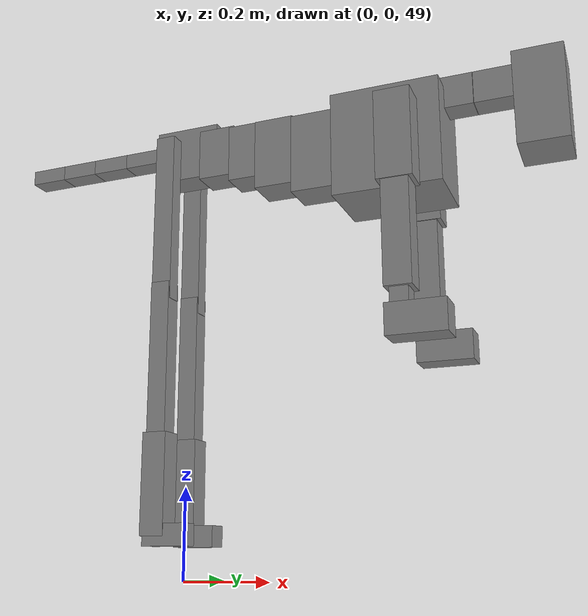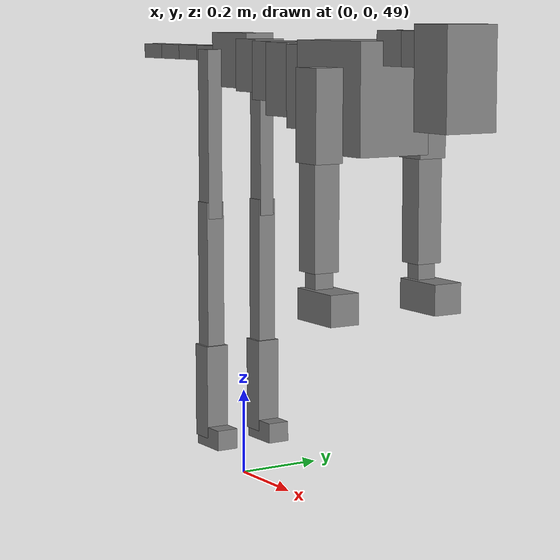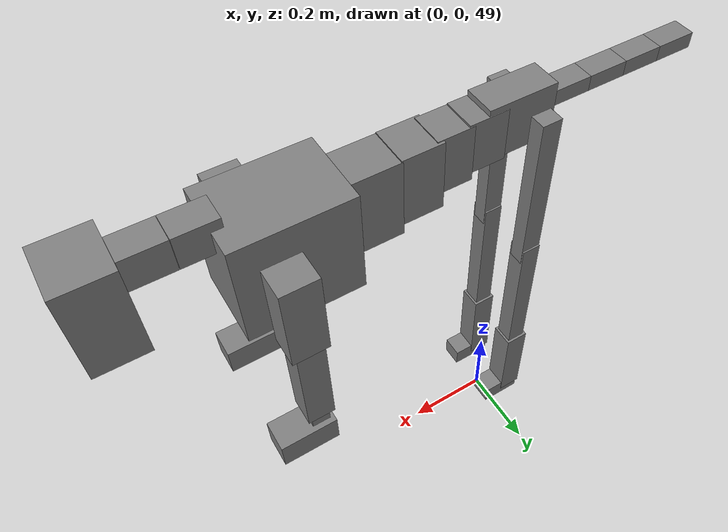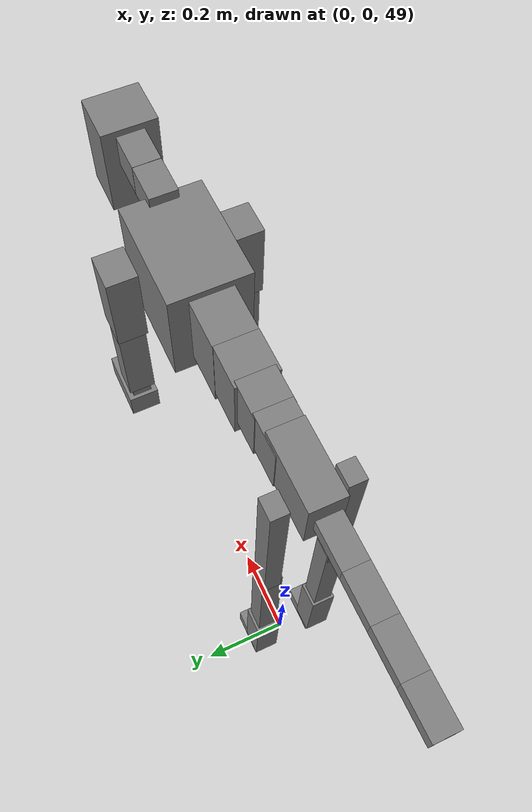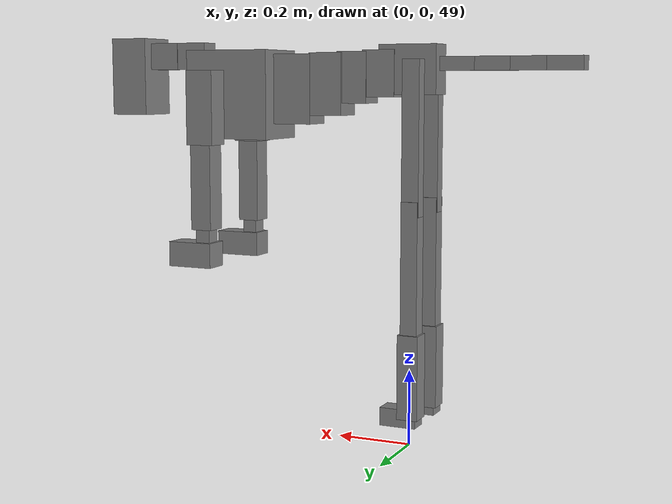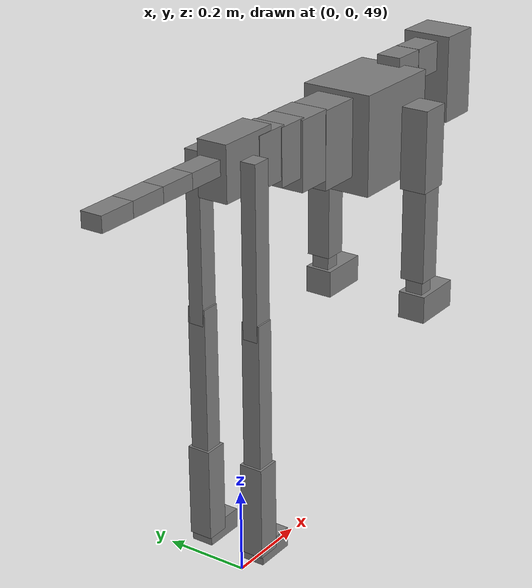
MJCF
<mujoco model="dog">

    <default>
        <joint armature="0.02" stiffness="1" damping="0.2" limited="true"/>
        <geom condim="3" friction="1 0.05 0.05" margin="0.01"/>
        <motor ctrllimited="true" ctrlrange="-1.0 1.0" forcelimited="true" gear="50"/>
    </default>

    <compiler inertiafromgeom="true" angle="radian"/>

    <option timestep="0.016" iterations="50" tolerance="1e-10" solver="Newton" jacobian="dense" cone="pyramidal"/>

    <size nconmax="20000" njmax="60000" nstack="5000000"/>
    <visual>
        <map force="0.1" zfar="30"/>
        <rgba haze="0.15 0.25 0.35 1"/>
        <quality shadowsize="2048"/>
        <global offwidth="800" offheight="800"/>
    </visual>

    <asset>
        <texture type="skybox" builtin="gradient" rgb1="0.3 0.5 0.7" rgb2="0 0 0" width="512" height="512"/>
        <texture name="texplane" type="2d" builtin="checker" rgb1=".2 .3 .4" rgb2=".1 0.15 0.2" width="512" height="512"
                 mark="cross" markrgb=".8 .8 .8"/>
        <texture name="texgeom" type="cube" builtin="flat" mark="cross" width="127" height="1278" rgb1="0.8 0.6 0.4"
                 rgb2="0.8 0.6 0.4" markrgb="1 1 1" random="0.01"/>

        <material name="matplane" reflectance="0.3" texture="texplane" texrepeat="1 1" texuniform="true"/>
        <material name="matgeom" texture="texgeom" texuniform="true" rgba="0.8 0.6 .4 1"/>
    </asset>

    <worldbody>
        <geom name="floor" pos="0 0 0" size="0 0 .25" type="plane" material="matplane" condim="3"/>

        <light directional="false" diffuse=".2 .2 .2" specular="0 0 0" pos="0 0 5" dir="0 0 -1" castshadow="false"/>
        <light mode="targetbodycom" target="torso" directional="false" diffuse=".8 .8 .8" specular="0.3 0.3 0.3"
               pos="0 0 4.0" dir="0 0 -1"/>

        <body name="root" pos="0 0 50">
            <freejoint name="root_1"/>
            <geom type="box" pos="0 0 -0.02" size="0.0774  0.0358  0.063" density="2030"/>

            <body name="spine1" pos="0.054 0 0">
                <joint name="spine1_y" axis="0 1 0" range="0 0.7" limited="true"/>
                <geom type="box" pos="0.02375 0 -0.03" size="0.04375  0.0375  0.05985" density="2030"/>

                <body name="spine2" pos="0.0612 0 0">
                    <joint name="spine2_y" axis="0 1 0" range="-0.15 0.15" limited="true"/>
                    <geom type="box" pos="0.03555  0  -0.04" size="0.04055  0.039  0.06615" density="2030"/>

                    <body name="spine3" pos="0.0730 0 0">
                        <joint name="spine3_y" axis="0 1 0" range="-0.15 0.15" limited="true"/>
                        <geom type="box" pos="0.03555  0  -0.057" size="0.04555  0.0445  0.081" density="2030"/>

                        <body name="spine4" pos="0.0780 0 0">
                            <joint name="spine4_y" axis="0 1 0" range="-0.15 0.15" limited="true"/>
                            <geom type="box" pos="0.05265  0  -0.07" size="0.05265  0.045  0.09135" density="2030"/>

                            <body name="torso" pos="0.1082 0 0">
                                <joint name="torso_y" axis="0 1 0" range="-0.15 0.15" limited="true"/>
                                <geom type="box" pos="0.11925  0  -0.085" size="0.11925  0.085  0.11745"
                                      density="2030"/>

                                <body name="neck1" pos="0.2160  0   0.0180">
                                    <joint name="neck1_y" axis="0 1 0" range="-1.2  -1" limited="true"/>
                                    <geom type="box" pos="0.0423  0  0" size="0.0423  0.03  0.036" density="2325"/>

                                    <body name="neck2" pos="0.0853  0  0">
                                        <joint name="neck2_y" axis="0 1 0" range="0.1  0" limited="true"/>
                                        <geom type="box" pos="0.0423  0  0" size="0.0423  0.03  0.036" density="2325"/>

                                        <body name="head" pos="0.0853  0  0">
                                            <joint name="head_y" axis="0 1 0" range="-0.3  -0.2" limited="true"/>
                                            <geom type="box" pos="0.0531  0  -0.055" size="0.0531  0.06  0.1044"
                                                  density="4030"/>

                                        </body>
                                    </body>
                                </body>

                                <body name="front_shoulder" pos="0.156  0   -0.0480">
                                    <joint name="front_shoulder_y" axis="0 1 0" range="-1 1.5" limited="true"/>
                                    <geom type="box" pos="0 0.13 -0.0706" size="0.0381  0.0325  0.0973" density="1158"/>
                                    <geom type="box" pos="0 -0.13 -0.0706" size="0.0381  0.0325  0.0973"
                                          density="1158"/>

                                    <body name="front_elbow" pos="0  0  -0.1412">
                                        <joint name="front_elbow_y" axis="0 1 0" range="-2 0" limited="true"/>
                                        <geom type="box" pos="0 0.13 -0.1254" size="0.0290  0.0297  0.1254"
                                              density="1081"/>
                                        <geom type="box" pos="0 -0.13 -0.1254" size="0.0290  0.0297  0.1254"
                                              density="1081"/>

                                        <body name="front_wrist" pos="0  0  -0.2508">
                                            <joint name="front_wrist_y" axis="0 1 0" range="-0.2 0" limited="true"/>
                                            <geom type="box" pos="0 0.13 -0.0247" size="0.0195  0.0217  0.0378"
                                                  density="1664"/>
                                            <geom type="box" pos="0 -0.13 -0.0247" size="0.0195  0.0217  0.0378"
                                                  density="1664"/>

                                            <body name="front_finger_end" pos="0  0  -0.0493">
                                                <joint name="front_finger_y" axis="0 1 0" range="-0.4 1"
                                                       limited="true"/>
                                                <geom type="box" pos="0.0339  0.13  -0.0180"
                                                      size="0.0621  0.0339  0.0330" density="1515"/>
                                                <geom type="box" pos="0.0339  -0.13  -0.0180"
                                                      size="0.0621  0.0339  0.0330" density="1515"/>

                                            </body>

                                        </body>
                                    </body>
                                </body>

                            </body>
                        </body>
                    </body>
                </body>
            </body>

            <body name="back_hip" pos="-0.03 0 -0.018">
                <joint name="back_hip_y" axis="0 1 0" range="-1.5 0.3" limited="true"/>
                <geom type="box" pos="0 0.07 -0.1732" size="0.0227  0.0178  0.1960" density="1154"/>
                <geom type="box" pos="0 -0.07 -0.1732" size="0.0227  0.0178  0.1960" density="1154"/>

                <body name="back_knee" pos="0  0  -0.3464">
                    <joint name="back_knee_y" axis="0 1 0" range="0 2.8" limited="true"/>
                    <geom type="box" pos="0 0.07 -0.1670" size="0.0219  0.0216  0.1826" density="1227"/>
                    <geom type="box" pos="0 -0.07 -0.1670" size="0.0219  0.0216  0.1826" density="1227"/>

                    <body name="back_ankle" pos="0  0  -0.3341">
                        <joint name="back_ankle_y" axis="0 1 0" range="-2.2 0" limited="true"/>
                        <geom type="box" pos="0 0.07 -0.0981" size="0.0274  0.0274  0.1094" density="1284"/>
                        <geom type="box" pos="0 -0.07 -0.0981" size="0.0274  0.0274  0.1094" density="1284"/>

                        <body name="back_toe_end" pos="0  0  -0.1963">
                            <joint name="back_toe_y" axis="0 1 0" range="-0.4 1" limited="true"/>
                            <geom type="box" pos="0.0261  0.07  -0.0085" size="0.0478  0.0261  0.0235" density="1515"/>
                            <geom type="box" pos="0.0261  -0.07  -0.0085" size="0.0478  0.0261  0.0235" density="1515"/>

                        </body>
                    </body>
                </body>
            </body>

            <body name="tail1" pos="-0.074 0 -0.006">
                <joint name="tail1_y" axis="0 1 0" range="-0.2 0.2" limited="true"/>
                <geom type="box" pos="-0.0536  0  0" size="0.045  0.025  0.0175" density="1587"/>

                <body name="tail2" pos="-0.09 0 0">
                    <joint name="tail2_y" axis="0 1 0" range="-0.2 0.2" limited="true"/>
                    <geom type="box" pos="-0.0536  0  0" size="0.045  0.025  0.0175" density="1587"/>

                    <body name="tail3" pos="-0.09 0 0">
                        <joint name="tail3_y" axis="0 1 0" range="-0.2 0.2" limited="true"/>
                        <geom type="box" pos="-0.0536  0  0" size="0.045  0.025  0.0175" density="1587"/>

                        <body name="tail4" pos="-0.09 0 0">
                            <joint name="tail4_y" axis="0 1 0" range="-0.2 0.2" limited="true"/>
                            <geom type="box" pos="-0.0536  0  0" size="0.045  0.025  0.0175" density="1587"/>

                        </body>
                    </body>
                </body>
            </body>
        </body>
    </worldbody>

    <actuator>
        <motor joint="spine1_y" forcerange="-150 150     "/>
        <motor joint="spine2_y" forcerange="-150 150     "/>
        <motor joint="spine3_y" forcerange="-150 150     "/>
        <motor joint="spine4_y" forcerange="-150 150     "/>
        <motor joint="torso_y" forcerange="-150 150     "/>
        <motor joint="neck1_y" forcerange="-100 100       "/>
        <motor joint="neck2_y" forcerange="-100 100       "/>
        <motor joint="head_y" forcerange="-150 150       "/>
        <motor joint="front_shoulder_y" forcerange="-189.05 127.88"/>
        <motor joint="front_elbow_y" forcerange="-169.27 146.49"/>
        <motor joint="front_wrist_y" forcerange="-109.73 63.48"/>
        <motor joint="front_finger_y" forcerange="-64.56 76.12"/>
        <motor joint="back_hip_y" forcerange="-219.75 217.35"/>
        <motor joint="back_knee_y" forcerange="-282.20 231.89"/>
        <motor joint="back_angle_y" forcerange="-176.34 161.49"/>
        <motor joint="back_toe_y" forcerange="-56.06 72.42"/>
        <motor joint="tail1_y" forcerange="-50 50     "/>
        <motor joint="tail2_y" forcerange="-50 50     "/>
        <motor joint="tail3_y" forcerange="-50 50     "/>
        <motor joint="tail4_y" forcerange="-50 50     "/>
    </actuator>
</mujoco>
